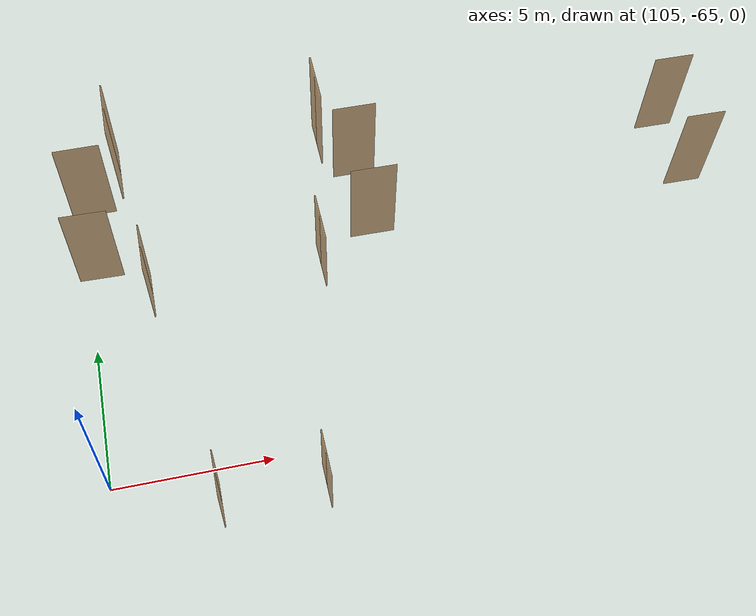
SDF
<sdf version="1.7">
 <world name="sim_world">
  <model name="p154">
   <pose>108.20167180231704 -66.16505066516552 0.0 0 0 -1.5734344453449778</pose>
   <link name="right">
    <pose>0.36851814114122716 0 1.11 0 0 0</pose>
    <visual name="right_visual">
     <geometry><box><size>0.7270362822824543 0.03 2.2</size></box></geometry>
     <material>
      <ambient>0.5 0.25 0 0.6</ambient>
      <diffuse>0.5 0.25 0 0.6</diffuse>
      <pbr><metal><metalness>0.0</metalness></metal></pbr>
     </material>
    </visual>
    <collision name="right_collision">
     <geometry><box><size>0.7270362822824543 0.03 2.2</size></box></geometry>
     <surface><contact><collide_bitmask>0x02</collide_bitmask></contact></surface>
    </collision>
    <inertial>
     <mass>50.0</mass>
     <inertia><ixx>20.17041666666667</ixx><iyy>22.369090648979554</iyy><izz>2.206173982312886</izz></inertia>
    </inertial>
   </link>
   <joint name="right_joint" type="revolute">
    <parent>world</parent>
    <child>right</child>
    <axis><xyz>0 0 -1</xyz><limit><lower>0</lower><upper>1.57</upper></limit></axis>
    <pose>0.36851814114122716 0 0 0 0 0</pose>
   </joint>
   <link name="left">
    <pose>-0.36851814114122716 0 1.11 0 0 0</pose>
    <visual name="left_visual">
     <geometry><box><size>0.7270362822824543 0.03 2.2</size></box></geometry>
     <material>
      <ambient>0.5 0.25 0 0.6</ambient>
      <diffuse>0.5 0.25 0 0.6</diffuse>
      <pbr><metal><metalness>0.0</metalness></metal></pbr>
     </material>
    </visual>
    <collision name="left_collision">
     <geometry><box><size>0.7270362822824543 0.03 2.2</size></box></geometry>
     <surface><contact><collide_bitmask>0x02</collide_bitmask></contact></surface>
    </collision>
    <inertial>
     <mass>50.0</mass>
     <inertia><ixx>20.17041666666667</ixx><iyy>22.369090648979554</iyy><izz>2.206173982312886</izz></inertia>
    </inertial>
   </link>
   <joint name="left_joint" type="revolute">
    <parent>world</parent>
    <child>left</child>
    <axis><xyz>0 0 -1</xyz><limit><lower>-1.57</lower><upper>0</upper></limit></axis>
    <pose>-0.36851814114122716 0 0 0 0 0</pose>
   </joint>
   <plugin name="register_component" filename="libregister_component.so">
    <component name="Door">
     <v_max_door>0.5</v_max_door>
     <a_max_door>0.3</a_max_door>
     <a_nom_door>0.15</a_nom_door>
     <dx_min_door>0.01</dx_min_door>
     <f_max_door>500.0</f_max_door>
     <ros_interface>true</ros_interface>
     <door name="p154" type="DoubleSwingDoor" left_joint_name="left_joint" right_joint_name="right_joint"/>
    </component>
   </plugin>
  </model>
  <model name="p155">
   <pose>111.40269917928366 -66.20253844330543 0.0 0 0 1.5729267216900409</pose>
   <link name="right">
    <pose>0.3755063927096079 0 1.11 0 0 0</pose>
    <visual name="right_visual">
     <geometry><box><size>0.7410127854192158 0.03 2.2</size></box></geometry>
     <material>
      <ambient>0.5 0.25 0 0.6</ambient>
      <diffuse>0.5 0.25 0 0.6</diffuse>
      <pbr><metal><metalness>0.0</metalness></metal></pbr>
     </material>
    </visual>
    <collision name="right_collision">
     <geometry><box><size>0.7410127854192158 0.03 2.2</size></box></geometry>
     <surface><contact><collide_bitmask>0x02</collide_bitmask></contact></surface>
    </collision>
    <inertial>
     <mass>50.0</mass>
     <inertia><ixx>20.17041666666667</ixx><iyy>22.454583117311444</iyy><izz>2.2916664506447697</izz></inertia>
    </inertial>
   </link>
   <joint name="right_joint" type="revolute">
    <parent>world</parent>
    <child>right</child>
    <axis><xyz>0 0 -1</xyz><limit><lower>0</lower><upper>1.57</upper></limit></axis>
    <pose>0.3755063927096079 0 0 0 0 0</pose>
   </joint>
   <link name="left">
    <pose>-0.3755063927096079 0 1.11 0 0 0</pose>
    <visual name="left_visual">
     <geometry><box><size>0.7410127854192158 0.03 2.2</size></box></geometry>
     <material>
      <ambient>0.5 0.25 0 0.6</ambient>
      <diffuse>0.5 0.25 0 0.6</diffuse>
      <pbr><metal><metalness>0.0</metalness></metal></pbr>
     </material>
    </visual>
    <collision name="left_collision">
     <geometry><box><size>0.7410127854192158 0.03 2.2</size></box></geometry>
     <surface><contact><collide_bitmask>0x02</collide_bitmask></contact></surface>
    </collision>
    <inertial>
     <mass>50.0</mass>
     <inertia><ixx>20.17041666666667</ixx><iyy>22.454583117311444</iyy><izz>2.2916664506447697</izz></inertia>
    </inertial>
   </link>
   <joint name="left_joint" type="revolute">
    <parent>world</parent>
    <child>left</child>
    <axis><xyz>0 0 -1</xyz><limit><lower>-1.57</lower><upper>0</upper></limit></axis>
    <pose>-0.3755063927096079 0 0 0 0 0</pose>
   </joint>
   <plugin name="register_component" filename="libregister_component.so">
    <component name="Door">
     <v_max_door>0.5</v_max_door>
     <a_max_door>0.3</a_max_door>
     <a_nom_door>0.15</a_nom_door>
     <dx_min_door>0.01</dx_min_door>
     <f_max_door>500.0</f_max_door>
     <ros_interface>true</ros_interface>
     <door name="p155" type="DoubleSwingDoor" left_joint_name="left_joint" right_joint_name="right_joint"/>
    </component>
   </plugin>
  </model>
  <model name="puerta92">
   <pose>107.38039707231297 -61.77589538069814 5.0 0 0 -1.5706432681940634</pose>
   <link name="right">
    <pose>0.3797883303047817 0 1.11 0 0 0</pose>
    <visual name="right_visual">
     <geometry><box><size>0.7495766606095634 0.03 2.2</size></box></geometry>
     <material>
      <ambient>0.5 0.25 0 0.6</ambient>
      <diffuse>0.5 0.25 0 0.6</diffuse>
      <pbr><metal><metalness>0.0</metalness></metal></pbr>
     </material>
    </visual>
    <collision name="right_collision">
     <geometry><box><size>0.7495766606095634 0.03 2.2</size></box></geometry>
     <surface><contact><collide_bitmask>0x02</collide_bitmask></contact></surface>
    </collision>
    <inertial>
     <mass>50.0</mass>
     <inertia><ixx>20.17041666666667</ixx><iyy>22.507771542210772</iyy><izz>2.3448548755441028</izz></inertia>
    </inertial>
   </link>
   <joint name="right_joint" type="revolute">
    <parent>world</parent>
    <child>right</child>
    <axis><xyz>0 0 -1</xyz><limit><lower>0</lower><upper>1.57</upper></limit></axis>
    <pose>0.3797883303047817 0 0 0 0 0</pose>
   </joint>
   <link name="left">
    <pose>-0.3797883303047817 0 1.11 0 0 0</pose>
    <visual name="left_visual">
     <geometry><box><size>0.7495766606095634 0.03 2.2</size></box></geometry>
     <material>
      <ambient>0.5 0.25 0 0.6</ambient>
      <diffuse>0.5 0.25 0 0.6</diffuse>
      <pbr><metal><metalness>0.0</metalness></metal></pbr>
     </material>
    </visual>
    <collision name="left_collision">
     <geometry><box><size>0.7495766606095634 0.03 2.2</size></box></geometry>
     <surface><contact><collide_bitmask>0x02</collide_bitmask></contact></surface>
    </collision>
    <inertial>
     <mass>50.0</mass>
     <inertia><ixx>20.17041666666667</ixx><iyy>22.507771542210772</iyy><izz>2.3448548755441028</izz></inertia>
    </inertial>
   </link>
   <joint name="left_joint" type="revolute">
    <parent>world</parent>
    <child>left</child>
    <axis><xyz>0 0 -1</xyz><limit><lower>-1.57</lower><upper>0</upper></limit></axis>
    <pose>-0.3797883303047817 0 0 0 0 0</pose>
   </joint>
   <plugin name="register_component" filename="libregister_component.so">
    <component name="Door">
     <v_max_door>0.5</v_max_door>
     <a_max_door>0.3</a_max_door>
     <a_nom_door>0.15</a_nom_door>
     <dx_min_door>0.01</dx_min_door>
     <f_max_door>500.0</f_max_door>
     <ros_interface>true</ros_interface>
     <door name="puerta92" type="DoubleSwingDoor" left_joint_name="left_joint" right_joint_name="right_joint"/>
    </component>
   </plugin>
  </model>
  <model name="puerta95">
   <pose>112.22239188549145 -61.742995470167614 5.0 0 0 1.5680669132694736</pose>
   <link name="right">
    <pose>0.3778008101715654 0 1.11 0 0 0</pose>
    <visual name="right_visual">
     <geometry><box><size>0.7456016203431308 0.03 2.2</size></box></geometry>
     <material>
      <ambient>0.5 0.25 0 0.6</ambient>
      <diffuse>0.5 0.25 0 0.6</diffuse>
      <pbr><metal><metalness>0.0</metalness></metal></pbr>
     </material>
    </visual>
    <collision name="right_collision">
     <geometry><box><size>0.7456016203431308 0.03 2.2</size></box></geometry>
     <surface><contact><collide_bitmask>0x02</collide_bitmask></contact></surface>
    </collision>
    <inertial>
     <mass>50.0</mass>
     <inertia><ixx>20.17041666666667</ixx><iyy>22.483007401076264</iyy><izz>2.3200907344095927</izz></inertia>
    </inertial>
   </link>
   <joint name="right_joint" type="revolute">
    <parent>world</parent>
    <child>right</child>
    <axis><xyz>0 0 -1</xyz><limit><lower>0</lower><upper>1.57</upper></limit></axis>
    <pose>0.3778008101715654 0 0 0 0 0</pose>
   </joint>
   <link name="left">
    <pose>-0.3778008101715654 0 1.11 0 0 0</pose>
    <visual name="left_visual">
     <geometry><box><size>0.7456016203431308 0.03 2.2</size></box></geometry>
     <material>
      <ambient>0.5 0.25 0 0.6</ambient>
      <diffuse>0.5 0.25 0 0.6</diffuse>
      <pbr><metal><metalness>0.0</metalness></metal></pbr>
     </material>
    </visual>
    <collision name="left_collision">
     <geometry><box><size>0.7456016203431308 0.03 2.2</size></box></geometry>
     <surface><contact><collide_bitmask>0x02</collide_bitmask></contact></surface>
    </collision>
    <inertial>
     <mass>50.0</mass>
     <inertia><ixx>20.17041666666667</ixx><iyy>22.483007401076264</iyy><izz>2.3200907344095927</izz></inertia>
    </inertial>
   </link>
   <joint name="left_joint" type="revolute">
    <parent>world</parent>
    <child>left</child>
    <axis><xyz>0 0 -1</xyz><limit><lower>-1.57</lower><upper>0</upper></limit></axis>
    <pose>-0.3778008101715654 0 0 0 0 0</pose>
   </joint>
   <plugin name="register_component" filename="libregister_component.so">
    <component name="Door">
     <v_max_door>0.5</v_max_door>
     <a_max_door>0.3</a_max_door>
     <a_nom_door>0.15</a_nom_door>
     <dx_min_door>0.01</dx_min_door>
     <f_max_door>500.0</f_max_door>
     <ros_interface>true</ros_interface>
     <door name="puerta95" type="DoubleSwingDoor" left_joint_name="left_joint" right_joint_name="right_joint"/>
    </component>
   </plugin>
  </model>
  <model name="puerta166">
   <pose>107.38119382353091 -61.77611395326209 10.0 0 0 -1.5706415577171948</pose>
   <link name="right">
    <pose>0.37979276912119786 0 1.11 0 0 0</pose>
    <visual name="right_visual">
     <geometry><box><size>0.7495855382423957 0.03 2.2</size></box></geometry>
     <material>
      <ambient>0.5 0.25 0 0.6</ambient>
      <diffuse>0.5 0.25 0 0.6</diffuse>
      <pbr><metal><metalness>0.0</metalness></metal></pbr>
     </material>
    </visual>
    <collision name="right_collision">
     <geometry><box><size>0.7495855382423957 0.03 2.2</size></box></geometry>
     <surface><contact><collide_bitmask>0x02</collide_bitmask></contact></surface>
    </collision>
    <inertial>
     <mass>50.0</mass>
     <inertia><ixx>20.17041666666667</ixx><iyy>22.507826996425596</iyy><izz>2.3449103297589255</izz></inertia>
    </inertial>
   </link>
   <joint name="right_joint" type="revolute">
    <parent>world</parent>
    <child>right</child>
    <axis><xyz>0 0 -1</xyz><limit><lower>0</lower><upper>1.57</upper></limit></axis>
    <pose>0.37979276912119786 0 0 0 0 0</pose>
   </joint>
   <link name="left">
    <pose>-0.37979276912119786 0 1.11 0 0 0</pose>
    <visual name="left_visual">
     <geometry><box><size>0.7495855382423957 0.03 2.2</size></box></geometry>
     <material>
      <ambient>0.5 0.25 0 0.6</ambient>
      <diffuse>0.5 0.25 0 0.6</diffuse>
      <pbr><metal><metalness>0.0</metalness></metal></pbr>
     </material>
    </visual>
    <collision name="left_collision">
     <geometry><box><size>0.7495855382423957 0.03 2.2</size></box></geometry>
     <surface><contact><collide_bitmask>0x02</collide_bitmask></contact></surface>
    </collision>
    <inertial>
     <mass>50.0</mass>
     <inertia><ixx>20.17041666666667</ixx><iyy>22.507826996425596</iyy><izz>2.3449103297589255</izz></inertia>
    </inertial>
   </link>
   <joint name="left_joint" type="revolute">
    <parent>world</parent>
    <child>left</child>
    <axis><xyz>0 0 -1</xyz><limit><lower>-1.57</lower><upper>0</upper></limit></axis>
    <pose>-0.37979276912119786 0 0 0 0 0</pose>
   </joint>
   <plugin name="register_component" filename="libregister_component.so">
    <component name="Door">
     <v_max_door>0.5</v_max_door>
     <a_max_door>0.3</a_max_door>
     <a_nom_door>0.15</a_nom_door>
     <dx_min_door>0.01</dx_min_door>
     <f_max_door>500.0</f_max_door>
     <ros_interface>true</ros_interface>
     <door name="puerta166" type="DoubleSwingDoor" left_joint_name="left_joint" right_joint_name="right_joint"/>
    </component>
   </plugin>
  </model>
  <model name="puerta169">
   <pose>112.21580386182761 -61.76887608534549 10.0 0 0 1.5624825603990258</pose>
   <link name="right">
    <pose>0.330676871893281 0 1.11 0 0 0</pose>
    <visual name="right_visual">
     <geometry><box><size>0.651353743786562 0.03 2.2</size></box></geometry>
     <material>
      <ambient>0.5 0.25 0 0.6</ambient>
      <diffuse>0.5 0.25 0 0.6</diffuse>
      <pbr><metal><metalness>0.0</metalness></metal></pbr>
     </material>
    </visual>
    <collision name="right_collision">
     <geometry><box><size>0.651353743786562 0.03 2.2</size></box></geometry>
     <surface><contact><collide_bitmask>0x02</collide_bitmask></contact></surface>
    </collision>
    <inertial>
     <mass>50.0</mass>
     <inertia><ixx>20.17041666666667</ixx><iyy>21.934423748103214</iyy><izz>1.7715070814365428</izz></inertia>
    </inertial>
   </link>
   <joint name="right_joint" type="revolute">
    <parent>world</parent>
    <child>right</child>
    <axis><xyz>0 0 -1</xyz><limit><lower>0</lower><upper>1.57</upper></limit></axis>
    <pose>0.330676871893281 0 0 0 0 0</pose>
   </joint>
   <link name="left">
    <pose>-0.330676871893281 0 1.11 0 0 0</pose>
    <visual name="left_visual">
     <geometry><box><size>0.651353743786562 0.03 2.2</size></box></geometry>
     <material>
      <ambient>0.5 0.25 0 0.6</ambient>
      <diffuse>0.5 0.25 0 0.6</diffuse>
      <pbr><metal><metalness>0.0</metalness></metal></pbr>
     </material>
    </visual>
    <collision name="left_collision">
     <geometry><box><size>0.651353743786562 0.03 2.2</size></box></geometry>
     <surface><contact><collide_bitmask>0x02</collide_bitmask></contact></surface>
    </collision>
    <inertial>
     <mass>50.0</mass>
     <inertia><ixx>20.17041666666667</ixx><iyy>21.934423748103214</iyy><izz>1.7715070814365428</izz></inertia>
    </inertial>
   </link>
   <joint name="left_joint" type="revolute">
    <parent>world</parent>
    <child>left</child>
    <axis><xyz>0 0 -1</xyz><limit><lower>-1.57</lower><upper>0</upper></limit></axis>
    <pose>-0.330676871893281 0 0 0 0 0</pose>
   </joint>
   <plugin name="register_component" filename="libregister_component.so">
    <component name="Door">
     <v_max_door>0.5</v_max_door>
     <a_max_door>0.3</a_max_door>
     <a_nom_door>0.15</a_nom_door>
     <dx_min_door>0.01</dx_min_door>
     <f_max_door>500.0</f_max_door>
     <ros_interface>true</ros_interface>
     <door name="puerta169" type="DoubleSwingDoor" left_joint_name="left_joint" right_joint_name="right_joint"/>
    </component>
   </plugin>
  </model>
  <model name="puerta181">
   <pose>106.69239813486014 -62.879655941630354 10.0 0 0 0.00859329437138484</pose>
   <link name="right">
    <pose>0 0 1.11 0 0 0</pose>
    <visual name="right_visual">
     <geometry><box><size>0.9987272831296479 0.03 2.2</size></box></geometry>
     <material>
      <ambient>0.5 0.25 0 0.6</ambient>
      <diffuse>0.5 0.25 0 0.6</diffuse>
      <pbr><metal><metalness>0.0</metalness></metal></pbr>
     </material>
    </visual>
    <collision name="right_collision">
     <geometry><box><size>0.9987272831296479 0.03 2.2</size></box></geometry>
     <surface><contact><collide_bitmask>0x02</collide_bitmask></contact></surface>
    </collision>
    <inertial>
     <mass>50.0</mass>
     <inertia><ixx>20.17041666666667</ixx><iyy>24.322734108614707</iyy><izz>4.159817441948033</izz></inertia>
    </inertial>
   </link>
   <joint name="right_joint" type="revolute">
    <parent>world</parent>
    <child>right</child>
    <axis><xyz>0 0 1</xyz><limit><lower>0</lower><upper>1.57</upper></limit></axis>
    <pose>0.5043636415648239 0 0 0 0 0</pose>
   </joint>
   <plugin name="register_component" filename="libregister_component.so">
    <component name="Door">
     <v_max_door>0.5</v_max_door>
     <a_max_door>0.3</a_max_door>
     <a_nom_door>0.15</a_nom_door>
     <dx_min_door>0.01</dx_min_door>
     <f_max_door>500.0</f_max_door>
     <ros_interface>true</ros_interface>
     <door name="puerta181" type="SwingDoor" left_joint_name="empty_joint" right_joint_name="right_joint"/>
    </component>
   </plugin>
  </model>
  <model name="puerta182">
   <pose>106.7120258891735 -64.76791001081955 10.0 0 0 -0.018710491778042827</pose>
   <link name="right">
    <pose>0 0 1.11 0 0 0</pose>
    <visual name="right_visual">
     <geometry><box><size>0.9761087217620327 0.03 2.2</size></box></geometry>
     <material>
      <ambient>0.5 0.25 0 0.6</ambient>
      <diffuse>0.5 0.25 0 0.6</diffuse>
      <pbr><metal><metalness>0.0</metalness></metal></pbr>
     </material>
    </visual>
    <collision name="right_collision">
     <geometry><box><size>0.9761087217620327 0.03 2.2</size></box></geometry>
     <surface><contact><collide_bitmask>0x02</collide_bitmask></contact></surface>
    </collision>
    <inertial>
     <mass>50.0</mass>
     <inertia><ixx>20.17041666666667</ixx><iyy>24.136617652916293</iyy><izz>3.9737009862496224</izz></inertia>
    </inertial>
   </link>
   <joint name="right_joint" type="revolute">
    <parent>world</parent>
    <child>right</child>
    <axis><xyz>0 0 -1</xyz><limit><lower>0</lower><upper>1.57</upper></limit></axis>
    <pose>0.49305436088101634 0 0 0 0 0</pose>
   </joint>
   <plugin name="register_component" filename="libregister_component.so">
    <component name="Door">
     <v_max_door>0.5</v_max_door>
     <a_max_door>0.3</a_max_door>
     <a_nom_door>0.15</a_nom_door>
     <dx_min_door>0.01</dx_min_door>
     <f_max_door>500.0</f_max_door>
     <ros_interface>true</ros_interface>
     <door name="puerta182" type="SwingDoor" left_joint_name="empty_joint" right_joint_name="right_joint"/>
    </component>
   </plugin>
  </model>
  <model name="puerta183">
   <pose>112.88528717381628 -62.896999535143784 10.0 0 0 -3.1408161459444925</pose>
   <link name="right">
    <pose>0 0 1.11 0 0 0</pose>
    <visual name="right_visual">
     <geometry><box><size>0.990890683240055 0.03 2.2</size></box></geometry>
     <material>
      <ambient>0.5 0.25 0 0.6</ambient>
      <diffuse>0.5 0.25 0 0.6</diffuse>
      <pbr><metal><metalness>0.0</metalness></metal></pbr>
     </material>
    </visual>
    <collision name="right_collision">
     <geometry><box><size>0.990890683240055 0.03 2.2</size></box></geometry>
     <surface><contact><collide_bitmask>0x02</collide_bitmask></contact></surface>
    </collision>
    <inertial>
     <mass>50.0</mass>
     <inertia><ixx>20.17041666666667</ixx><iyy>24.257768108883102</iyy><izz>4.09485144221643</izz></inertia>
    </inertial>
   </link>
   <joint name="right_joint" type="revolute">
    <parent>world</parent>
    <child>right</child>
    <axis><xyz>0 0 -1</xyz><limit><lower>0</lower><upper>1.57</upper></limit></axis>
    <pose>0.5004453416200275 0 0 0 0 0</pose>
   </joint>
   <plugin name="register_component" filename="libregister_component.so">
    <component name="Door">
     <v_max_door>0.5</v_max_door>
     <a_max_door>0.3</a_max_door>
     <a_nom_door>0.15</a_nom_door>
     <dx_min_door>0.01</dx_min_door>
     <f_max_door>500.0</f_max_door>
     <ros_interface>true</ros_interface>
     <door name="puerta183" type="SwingDoor" left_joint_name="empty_joint" right_joint_name="right_joint"/>
    </component>
   </plugin>
  </model>
  <model name="puerta184">
   <pose>112.91407098672062 -64.78184069193188 10.0 0 0 3.135801161097232</pose>
   <link name="right">
    <pose>0 0 1.11 0 0 0</pose>
    <visual name="right_visual">
     <geometry><box><size>1.0178450277051323 0.03 2.2</size></box></geometry>
     <material>
      <ambient>0.5 0.25 0 0.6</ambient>
      <diffuse>0.5 0.25 0 0.6</diffuse>
      <pbr><metal><metalness>0.0</metalness></metal></pbr>
     </material>
    </visual>
    <collision name="right_collision">
     <geometry><box><size>1.0178450277051323 0.03 2.2</size></box></geometry>
     <surface><contact><collide_bitmask>0x02</collide_bitmask></contact></surface>
    </collision>
    <inertial>
     <mass>50.0</mass>
     <inertia><ixx>20.17041666666667</ixx><iyy>24.483368751766925</iyy><izz>4.320452085100256</izz></inertia>
    </inertial>
   </link>
   <joint name="right_joint" type="revolute">
    <parent>world</parent>
    <child>right</child>
    <axis><xyz>0 0 1</xyz><limit><lower>0</lower><upper>1.57</upper></limit></axis>
    <pose>0.5139225138525662 0 0 0 0 0</pose>
   </joint>
   <plugin name="register_component" filename="libregister_component.so">
    <component name="Door">
     <v_max_door>0.5</v_max_door>
     <a_max_door>0.3</a_max_door>
     <a_nom_door>0.15</a_nom_door>
     <dx_min_door>0.01</dx_min_door>
     <f_max_door>500.0</f_max_door>
     <ros_interface>true</ros_interface>
     <door name="puerta184" type="SwingDoor" left_joint_name="empty_joint" right_joint_name="right_joint"/>
    </component>
   </plugin>
  </model>
  <model name="puerta185">
   <pose>120.51053463275265 -62.89561936009059 10.0 0 0 -0.006154143557541073</pose>
   <link name="right">
    <pose>0 0 1.11 0 0 0</pose>
    <visual name="right_visual">
     <geometry><box><size>0.9129667473342115 0.03 2.2</size></box></geometry>
     <material>
      <ambient>0.5 0.25 0 0.6</ambient>
      <diffuse>0.5 0.25 0 0.6</diffuse>
      <pbr><metal><metalness>0.0</metalness></metal></pbr>
     </material>
    </visual>
    <collision name="right_collision">
     <geometry><box><size>0.9129667473342115 0.03 2.2</size></box></geometry>
     <surface><contact><collide_bitmask>0x02</collide_bitmask></contact></surface>
    </collision>
    <inertial>
     <mass>50.0</mass>
     <inertia><ixx>20.17041666666667</ixx><iyy>23.639617840575045</iyy><izz>3.476701173908375</izz></inertia>
    </inertial>
   </link>
   <joint name="right_joint" type="revolute">
    <parent>world</parent>
    <child>right</child>
    <axis><xyz>0 0 1</xyz><limit><lower>0</lower><upper>1.57</upper></limit></axis>
    <pose>0.46148337366710573 0 0 0 0 0</pose>
   </joint>
   <plugin name="register_component" filename="libregister_component.so">
    <component name="Door">
     <v_max_door>0.5</v_max_door>
     <a_max_door>0.3</a_max_door>
     <a_nom_door>0.15</a_nom_door>
     <dx_min_door>0.01</dx_min_door>
     <f_max_door>500.0</f_max_door>
     <ros_interface>true</ros_interface>
     <door name="puerta185" type="SwingDoor" left_joint_name="empty_joint" right_joint_name="right_joint"/>
    </component>
   </plugin>
  </model>
  <model name="puerta186">
   <pose>120.51335844855546 -64.77065231848425 10.0 0 0 -0.008196289470000067</pose>
   <link name="right">
    <pose>0 0 1.11 0 0 0</pose>
    <visual name="right_visual">
     <geometry><box><size>0.8788866465058887 0.03 2.2</size></box></geometry>
     <material>
      <ambient>0.5 0.25 0 0.6</ambient>
      <diffuse>0.5 0.25 0 0.6</diffuse>
      <pbr><metal><metalness>0.0</metalness></metal></pbr>
     </material>
    </visual>
    <collision name="right_collision">
     <geometry><box><size>0.8788866465058887 0.03 2.2</size></box></geometry>
     <surface><contact><collide_bitmask>0x02</collide_bitmask></contact></surface>
    </collision>
    <inertial>
     <mass>50.0</mass>
     <inertia><ixx>20.17041666666667</ixx><iyy>23.385173905859865</iyy><izz>3.222257239193196</izz></inertia>
    </inertial>
   </link>
   <joint name="right_joint" type="revolute">
    <parent>world</parent>
    <child>right</child>
    <axis><xyz>0 0 -1</xyz><limit><lower>0</lower><upper>1.57</upper></limit></axis>
    <pose>0.44444332325294433 0 0 0 0 0</pose>
   </joint>
   <plugin name="register_component" filename="libregister_component.so">
    <component name="Door">
     <v_max_door>0.5</v_max_door>
     <a_max_door>0.3</a_max_door>
     <a_nom_door>0.15</a_nom_door>
     <dx_min_door>0.01</dx_min_door>
     <f_max_door>500.0</f_max_door>
     <ros_interface>true</ros_interface>
     <door name="puerta186" type="SwingDoor" left_joint_name="empty_joint" right_joint_name="right_joint"/>
    </component>
   </plugin>
  </model>
 </world>
</sdf>
